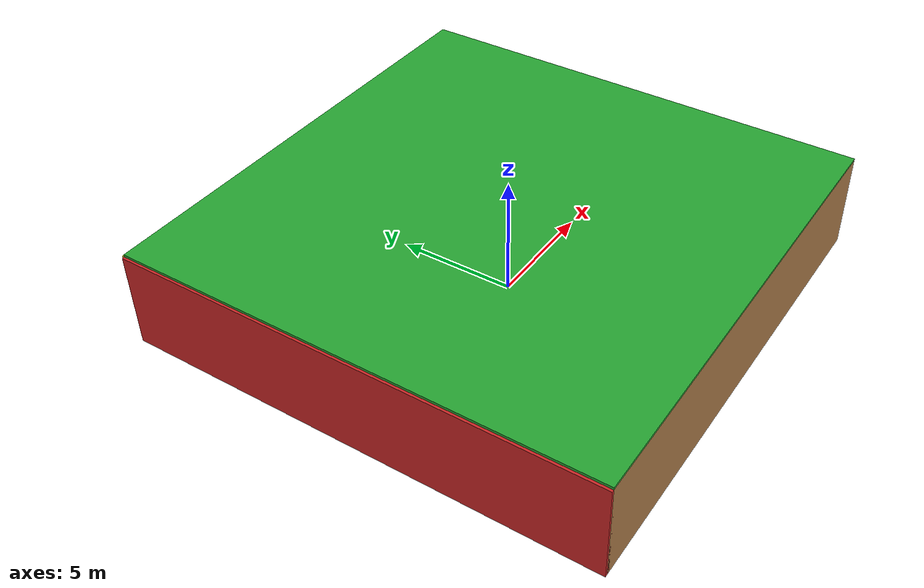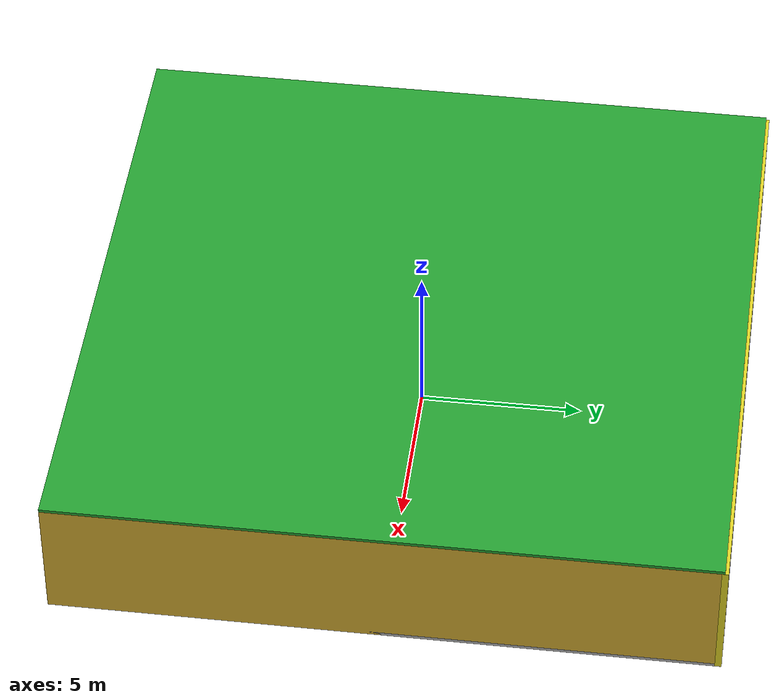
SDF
<sdf version="1.4">
 <world name="default">
  <physics type="ode">
   <max_step_size>0.001</max_step_size>
   <real_time_factor>1</real_time_factor>
   <real_time_update_rate>1000</real_time_update_rate>
   <gravity>0 0 -9.8</gravity>
  </physics>
  <scene><ambient>0.4 0.4 0.4 1</ambient><background>0.7 0.7 0.7 1</background><shadows>1</shadows></scene>
  <model name="Surrounding">
   <static>1</static>
   <link name="Ceiling">
    <collision name="Ceiling_Collision"><geometry><box><size>20 20 0.1</size></box></geometry></collision>
    <visual name="Ceiling_Visual">
     <geometry><box><size>20 20 0.1</size></box></geometry>
     <material>
      <script><uri>file://media/materials/scripts/gazebo.material</uri><name>Gazebo/Green</name></script>
     </material>
    </visual>
    <pose>0 0 4.05 0 0 0</pose>
   </link>
   <link name="Wall_South">
    <collision name="Wall_South_Collision">
     <geometry><box><size>20 0 4</size></box></geometry>
     <pose>0 0 2 0 -0 0</pose>
    </collision>
    <visual name="Wall_South_Visual">
     <pose>0 0 2 0 -0 0</pose>
     <geometry><box><size>20 0 4</size></box></geometry>
     <material>
      <script><uri>file://media/materials/scripts/gazebo.material</uri><name>Gazebo/Wood</name></script>
     </material>
    </visual>
    <velocity_decay><linear>0</linear><angular>0</angular></velocity_decay>
    <pose>0 -10 0 0 -0 0</pose>
   </link>
   <link name="Wall_East">
    <collision name="Wall_21_Collision">
     <geometry><box><size>20 0 4</size></box></geometry>
     <pose>0 0 2 0 -0 0</pose>
    </collision>
    <visual name="Wall_21_Visual">
     <pose>0 0 2 0 -0 0</pose>
     <geometry><box><size>20 0 4</size></box></geometry>
     <material>
      <script><uri>file://media/materials/scripts/gazebo.material</uri><name>Gazebo/Gold</name></script>
     </material>
    </visual>
    <velocity_decay><linear>0</linear><angular>0</angular></velocity_decay>
    <pose>10 0 0 0 -0 1.5708</pose>
   </link>
   <link name="Wall_North">
    <collision name="Wall_22_Collision">
     <geometry><box><size>20 0.2 4</size></box></geometry>
     <pose>0 0 2 0 -0 0</pose>
    </collision>
    <visual name="Wall_22_Visual">
     <pose>0 0 2 0 -0 0</pose>
     <geometry><box><size>20 0.2 4</size></box></geometry>
     <material>
      <script><uri>file://media/materials/scripts/gazebo.material</uri><name>Gazebo/YellowGlow</name></script>
     </material>
    </visual>
    <velocity_decay><linear>0</linear><angular>0</angular></velocity_decay>
    <pose>0 10 0 0 -0 0</pose>
   </link>
   <link name="Wall_West">
    <collision name="Wall_23_Collision">
     <geometry><box><size>20 0.2 4</size></box></geometry>
     <pose>0 0 2 0 -0 0</pose>
    </collision>
    <visual name="Wall_23_Visual">
     <pose>0 0 2 0 -0 0</pose>
     <geometry><box><size>20 0.2 4</size></box></geometry>
     <material>
      <script><uri>file://media/materials/scripts/gazebo.material</uri><name>Gazebo/RedBright</name></script>
     </material>
    </visual>
    <velocity_decay><linear>0</linear><angular>0</angular></velocity_decay>
    <pose>-10 0 0 0 0 -1.5708</pose>
   </link>
   <link name="Ground_link">
    <collision name="collision">
     <pose>0 0 .05 0 -0 0</pose>
     <geometry><box><size>20 20 0.1</size></box></geometry>
    </collision>
    <visual name="visual">
     <pose>0 0 .05 0 -0 0</pose>
     <geometry><box><size>20 20 0.1</size></box></geometry>
     <material>
      <script><uri>file://media/materials/scripts/gazebo.material</uri><name>Gazebo/PioneerBody</name></script>
     </material>
    </visual>
   </link>
   <static>1</static>
  </model>
  <spherical_coordinates>
   <surface_model>EARTH_WGS84</surface_model>
   <latitude_deg>0</latitude_deg>
   <longitude_deg>0</longitude_deg>
   <elevation>0</elevation>
   <heading_deg>0</heading_deg>
  </spherical_coordinates>
  <light name="lightball_0" type="diffuse">
   <diffuse>0.8 0.8 0.8 1</diffuse>
   <specular>0.2 0.2 0.2 1</specular>
   <attenuation>
    <range>100</range>
    <constant>0.7</constant>
    <linear>0.01</linear>
    <quadratic>0.001</quadratic>
   </attenuation>
   <direction>-0.5 0.1 -0.9</direction>
   <pose>-1.03596454018 2.85514704484 1.06696857901 0 0 0</pose>
  </light>
  <light name="lightball_1" type="diffuse">
   <diffuse>0.8 0.8 0.8 1</diffuse>
   <specular>0.2 0.2 0.2 1</specular>
   <attenuation>
    <range>100</range>
    <constant>0.7</constant>
    <linear>0.01</linear>
    <quadratic>0.001</quadratic>
   </attenuation>
   <direction>-0.5 0.1 -0.9</direction>
   <pose>2.10127721429 -8.61214485863 2.89331886409 0 0 0</pose>
  </light>
  <include><uri>model://table</uri><pose>-6.74715446949 -7.51721799492 0 0 0 0.101819004678</pose></include>
  <include><uri>model://cabinet</uri><pose>-7.36514493451 1.04918219356 0 0 0 0.701753558101</pose></include>
  <include><uri>model://cabinet</uri><pose>-8.04021281002 4.22796539699 0 0 0 2.65818764503</pose></include>
  <include>
   <uri>model://robocup_3Dsim_goal</uri>
   <pose>-3.94064111418 -1.66671697606 0 0 0 2.14850188191</pose>
  </include>
  <include><uri>model://cabinet</uri><pose>1.62263492646 -4.2899604294 0 0 0 2.99890370719</pose></include>
  <include><uri>model://cabinet</uri><pose>4.21342453213 5.02436649089 0 0 0 2.91643061962</pose></include>
  <include><uri>model://cabinet</uri><pose>7.01908833537 -3.80214470708 0 0 0 0.305427832923</pose></include>
  <include>
   <uri>model://textured_shapes</uri>
   <pose>7.27458779807 4.43615579369 0 0 0 2.94987616083</pose>
  </include>
  <include>
   <uri>model://construction_cone</uri>
   <pose>8.08708394184 7.56162543789 0 0 0 3.10788509134</pose>
  </include>
 </world>
</sdf>

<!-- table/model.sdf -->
<sdf version="1.5">
  <model name="table">
    <static>true</static>
    <link name="link">
      <collision name="surface">
        <pose>0 0 1.0 0 0 0</pose>
        <geometry>
          <box>
            <size>1.5 0.8 0.03</size>
          </box>
        </geometry>
        <surface>
          <friction>
            <ode>
              <mu>0.6</mu>
              <mu2>0.6</mu2>
            </ode>
          </friction>
        </surface>
      </collision>
      <visual name="visual1">
        <pose>0 0 1.0 0 0 0</pose>
        <geometry>
          <box>
            <size>1.5 0.8 0.03</size>
          </box>
        </geometry>
        <material>
          <script>
            <uri>model://media/materials/scripts/gazebo.material</uri>
            <name>Gazebo/Wood</name>
          </script>
        </material>
      </visual>
      <collision name="front_left_leg">
        <pose>0.68 0.38 0.5 0 0 0</pose>
        <geometry>
          <cylinder>
            <radius>0.02</radius>
            <length>1.0</length>
          </cylinder>
        </geometry>
      </collision>
      <visual name="front_left_leg">
        <pose>0.68 0.38 0.5 0 0 0</pose>
        <geometry>
          <cylinder>
            <radius>0.02</radius>
            <length>1.0</length>
          </cylinder>
        </geometry>
        <material>
          <script>
            <uri>model://media/materials/scripts/gazebo.material</uri>
            <name>Gazebo/Grey</name>
          </script>
        </material>
      </visual>
      <collision name="front_right_leg">
        <pose>0.68 -0.38 0.5 0 0 0</pose>
        <geometry>
          <cylinder>
            <radius>0.02</radius>
            <length>1.0</length>
          </cylinder>
        </geometry>
      </collision>
      <visual name="front_right_leg">
        <pose>0.68 -0.38 0.5 0 0 0</pose>
        <geometry>
          <cylinder>
            <radius>0.02</radius>
            <length>1.0</length>
          </cylinder>
        </geometry>
        <material>
          <script>
            <uri>model://media/materials/scripts/gazebo.material</uri>
            <name>Gazebo/Grey</name>
          </script>
        </material>
      </visual>
      <collision name="back_right_leg">
        <pose>-0.68 -0.38 0.5 0 0 0</pose>
        <geometry>
          <cylinder>
            <radius>0.02</radius>
            <length>1.0</length>
          </cylinder>
        </geometry>
      </collision>
      <visual name="back_right_leg">
        <pose>-0.68 -0.38 0.5 0 0 0</pose>
        <geometry>
          <cylinder>
            <radius>0.02</radius>
            <length>1.0</length>
          </cylinder>
        </geometry>
        <material>
          <script>
            <uri>model://media/materials/scripts/gazebo.material</uri>
            <name>Gazebo/Grey</name>
          </script>
        </material>
      </visual>
      <collision name="back_left_leg">
        <pose>-0.68 0.38 0.5 0 0 0</pose>
        <geometry>
          <cylinder>
            <radius>0.02</radius>
            <length>1.0</length>
          </cylinder>
        </geometry>
      </collision>
      <visual name="back_left_leg">
        <pose>-0.68 0.38 0.5 0 0 0</pose>
        <geometry>
          <cylinder>
            <radius>0.02</radius>
            <length>1.0</length>
          </cylinder>
        </geometry>
        <material>
          <script>
            <uri>model://media/materials/scripts/gazebo.material</uri>
            <name>Gazebo/Grey</name>
          </script>
        </material>
      </visual>
    </link>
  </model>
</sdf>

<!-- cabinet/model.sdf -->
<sdf version="1.5">
  <model name="cabinet">
    <static>true</static>
    <link name="cabinet_bottom_plate">
      <inertial>
        <pose>0 0 -1 0 0 0</pose>
        <inertia>
          <ixx>2.050000</ixx>
          <ixy>0</ixy>
          <ixz>0</ixz>
          <iyy>2.050000</iyy>
          <iyz>0</iyz>
          <izz>2.050000</izz>
        </inertia>
        <mass>25.000000</mass>
      </inertial>
      <collision name="cabinet_bottom_plate_geom">
        <pose>0 0 0.010000 0 0 0</pose>
        <geometry>
          <box>
            <size>0.450000 0.450000 0.020000</size>
          </box>
        </geometry>
      </collision>
      <visual name="cabinet_bottom_plate_geom_visual">
        <pose>0 0 0.010000 0 0 0</pose>
        <geometry>
          <box>
            <size>0.450000 0.450000 0.020000</size>
          </box>
        </geometry>
        <material>
          <script>
            <uri>model://media/materials/scripts/gazebo.material</uri>
            <name>Gazebo/Wood</name>
          </script>
        </material>
      </visual>
      <collision name="cabinet_bottom_plate_geom_cabinet_back_plate">
        <pose>0.235000 0 0.510000 0 0 0</pose>
        <geometry>
          <box>
            <size>0.020000 0.450000 1.020000</size>
          </box>
        </geometry>
      </collision>
      <visual name="cabinet_bottom_plate_geom_cabinet_back_plate_visual">
        <pose>0.235000 0 0.510000 0 0 0</pose>
        <geometry>
          <box>
            <size>0.020000 0.450000 1.020000</size>
          </box>
        </geometry>
        <material>
          <script>
            <uri>model://media/materials/scripts/gazebo.material</uri>
            <name>Gazebo/Wood</name>
          </script>
        </material>
      </visual>
      <collision name="cabinet_bottom_plate_geom_cabinet_left_plate">
        <pose>0 0.235000 0.510000 0 0 0</pose>
        <geometry>
          <box>
            <size>0.450000 0.020000 1.020000</size>
          </box>
        </geometry>
      </collision>
      <visual name="cabinet_bottom_plate_geom_cabinet_left_plate_visual">
        <pose>0 0.235000 0.510000 0 0 0</pose>
        <geometry>
          <box>
            <size>0.450000 0.020000 1.020000</size>
          </box>
        </geometry>
        <material>
          <script>
            <uri>model://media/materials/scripts/gazebo.material</uri>
            <name>Gazebo/Wood</name>
          </script>
        </material>
      </visual>
      <collision name="cabinet_bottom_plate_geom_cabinet_middle_plate">
        <pose>0 0 0.510000 0 0 0</pose>
        <geometry>
          <box>
            <size>0.450000 0.450000 0.020000</size>
          </box>
        </geometry>
      </collision>
      <visual name="cabinet_bottom_plate_geom_cabinet_middle_plate_visual">
        <pose>0 0 0.510000 0 0 0</pose>
        <geometry>
          <box>
            <size>0.450000 0.450000 0.020000</size>
          </box>
        </geometry>
        <material>
          <script>
            <uri>model://media/materials/scripts/gazebo.material</uri>
            <name>Gazebo/Wood</name>
          </script>
        </material>
      </visual>
      <collision name="cabinet_bottom_plate_geom_cabinet_right_plate">
        <pose>0 -0.235000 0.510000 0 0 0</pose>
        <geometry>
          <box>
            <size>0.450000 0.020000 1.020000</size>
          </box>
        </geometry>
      </collision>
      <visual name="cabinet_bottom_plate_geom_cabinet_right_plate_visual">
        <pose>0 -0.235000 0.510000 0 0 0</pose>
        <geometry>
          <box>
            <size>0.450000 0.020000 1.020000</size>
          </box>
        </geometry>
        <material>
          <script>
            <uri>model://media/materials/scripts/gazebo.material</uri>
            <name>Gazebo/Wood</name>
          </script>
        </material>
      </visual>
      <collision name="cabinet_bottom_plate_geom_cabinet_top_plate">
        <pose>0 0 1.010000 0 0 0</pose>
        <geometry>
          <box>
            <size>0.450000 0.450000 0.020000</size>
          </box>
        </geometry>
      </collision>
      <visual name="cabinet_bottom_plate_geom_cabinet_top_plate_visual">
        <pose>0 0 1.010000 0 0 0</pose>
        <geometry>
          <box>
            <size>0.450000 0.450000 0.020000</size>
          </box>
        </geometry>
        <material>
          <script>
            <uri>model://media/materials/scripts/gazebo.material</uri>
            <name>Gazebo/Wood</name>
          </script>
        </material>
      </visual>
    </link>
  </model>
</sdf>

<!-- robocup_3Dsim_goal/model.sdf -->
<sdf version="1.5">
  <model name="robocup_3d_goal">
    <static>true</static>
    <link name="left_post">
      <pose>0 1.05 0.45 0 0 0</pose>
      <collision name="collision">
        <geometry>
          <cylinder>
            <radius>0.05</radius>
            <length>0.9</length>
          </cylinder>
        </geometry>
      </collision>
      <visual name="visual">
        <geometry>
          <cylinder>
            <radius>0.05</radius>
            <length>0.9</length>
          </cylinder>
        </geometry>
        <material>
          <script>
            <uri>file://media/materials/scripts/gazebo.material</uri>
            <name>Gazebo/ZincYellow</name>
          </script>
        </material>
      </visual>
    </link>
    <link name="left_support_horiz_lower">
      <pose>0.30 1.05 0.01 0 0 0</pose>
      <collision name="collision">
        <geometry>
          <box>
            <size>0.50 0.02 0.02</size>
          </box>
        </geometry>
      </collision>
      <visual name="visual">
        <geometry>
          <box>
            <size>0.50 0.02 0.02</size>
          </box>
        </geometry>
        <material>
          <script>
            <uri>file://media/materials/scripts/gazebo.material</uri>
            <name>Gazebo/White</name>
          </script>
        </material>
      </visual>
    </link>
    <link name="left_support_horiz_upper">
      <pose>0.30 1.05 0.79 0 0 0</pose>
      <collision name="collision">
        <geometry>
          <box>
            <size>0.50 0.02 0.02</size>
          </box>
        </geometry>
      </collision>
      <visual name="visual">
        <geometry>
          <box>
            <size>0.50 0.02 0.02</size>
          </box>
        </geometry>
        <material>
          <script>
            <uri>file://media/materials/scripts/gazebo.material</uri>
            <name>Gazebo/White</name>
          </script>
        </material>
      </visual>
    </link>
    <link name="left_support_vertical">
      <pose>0.56 1.05 0.4 0 1.5708 0</pose>
      <collision name="collision">
        <geometry>
          <box>
            <size>0.80 0.02 0.02</size>
          </box>
        </geometry>
      </collision>
      <visual name="visual">
        <geometry>
          <box>
            <size>0.80 0.02 0.02</size>
          </box>
        </geometry>
        <material>
          <script>
            <uri>file://media/materials/scripts/gazebo.material</uri>
            <name>Gazebo/White</name>
          </script>
        </material>
      </visual>
    </link>
    <link name="right_support_horiz_lower">
      <pose>0.30 -1.05 0.01 0 0 0</pose>
      <collision name="collision">
        <geometry>
          <box>
            <size>0.50 0.02 0.02</size>
          </box>
        </geometry>
      </collision>
      <visual name="visual">
        <geometry>
          <box>
            <size>0.50 0.02 0.02</size>
          </box>
        </geometry>
        <material>
          <script>
            <uri>file://media/materials/scripts/gazebo.material</uri>
            <name>Gazebo/White</name>
          </script>
        </material>
      </visual>
    </link>
    <link name="right_support_horiz_upper">
      <pose>0.30 -1.05 0.79 0 0 0</pose>
      <collision name="collision">
        <geometry>
          <box>
            <size>0.50 0.02 0.02</size>
          </box>
        </geometry>
      </collision>
      <visual name="visual">
        <geometry>
          <box>
            <size>0.50 0.02 0.02</size>
          </box>
        </geometry>
        <material>
          <script>
            <uri>file://media/materials/scripts/gazebo.material</uri>
            <name>Gazebo/White</name>
          </script>
        </material>
      </visual>
    </link>
    <link name="right_support_vertical">
      <pose>0.56 -1.05 0.4 0 1.5708 0</pose>
      <collision name="collision">
        <geometry>
          <box>
            <size>0.80 0.02 0.02</size>
          </box>
        </geometry>
      </collision>
      <visual name="visual">
        <geometry>
          <box>
            <size>0.80 0.02 0.02</size>
          </box>
        </geometry>
        <material>
          <script>
            <uri>file://media/materials/scripts/gazebo.material</uri>
            <name>Gazebo/White</name>
          </script>
        </material>
      </visual>
    </link>
    <link name="center_support_horiz_lower">
      <pose>0.56 0 0.01 0 1.5708 0</pose>
      <collision name="collision">
        <geometry>
          <box>
            <size>0.02 2.08 0.02</size>
          </box>
        </geometry>
      </collision>
      <visual name="visual">
        <geometry>
          <box>
            <size>0.02 2.08 0.02</size>
          </box>
        </geometry>
        <material>
          <script>
            <uri>file://media/materials/scripts/gazebo.material</uri>
            <name>Gazebo/White</name>
          </script>
        </material>
      </visual>
    </link>
    <link name="center_support_horiz_upper">
      <pose>0.56 0 0.79 0 1.5708 0</pose>
      <collision name="collision">
        <geometry>
          <box>
            <size>0.02 2.08 0.02</size>
          </box>
        </geometry>
      </collision>
      <visual name="visual">
        <geometry>
          <box>
            <size>0.02 2.08 0.02</size>
          </box>
        </geometry>
        <material>
          <script>
            <uri>file://media/materials/scripts/gazebo.material</uri>
            <name>Gazebo/White</name>
          </script>
        </material>
      </visual>
    </link>
    <link name="right_post">
      <pose>0 -1.05 0.45 0 0 0</pose>
      <collision name="collision">
        <geometry>
          <cylinder>
            <radius>0.05</radius>
            <length>0.9</length>
          </cylinder>
        </geometry>
      </collision>
      <visual name="visual">
        <geometry>
          <cylinder>
            <radius>0.05</radius>
            <length>0.9</length>
          </cylinder>
        </geometry>
        <material>
          <script>
            <uri>file://media/materials/scripts/gazebo.material</uri>
            <name>Gazebo/ZincYellow</name>
          </script>
        </material>
      </visual>
    </link>
    <link name="crossbar">
      <pose>0 0 0.85 1.57 1.57 0</pose>
      <collision name="collision">
        <geometry>
          <cylinder>
            <radius>0.05</radius>
            <length>2.0</length>
          </cylinder>
        </geometry>
      </collision>
      <visual name="visual">
        <geometry>
          <cylinder>
            <radius>0.05</radius>
            <length>2.0</length>
          </cylinder>
        </geometry>
        <material>
          <script>
            <uri>file://media/materials/scripts/gazebo.material</uri>
            <name>Gazebo/ZincYellow</name>
          </script>
        </material>
      </visual>
    </link>
    <link name="center_net">
      <pose>0.56 0 0.40 0 0 0</pose>
      <collision name="collision">
        <geometry>
          <box>
            <size>0.01 2.1 0.80</size>
          </box>
        </geometry>
      </collision>
      <visual name="visual">
        <geometry>
          <box>
            <size>0.01 2.1 0.80</size>
          </box>
        </geometry>
        <material>
          <script>
            <uri>model://../model_source/models/robocup09_spl_field/materials/scripts/</uri>
            <uri>model://../model_source/models/robocup09_spl_field/materials/textures/</uri>
            <name>RoboCup/Net</name>
          </script>
        </material>
      </visual>
    </link>
    <link name="left_net">
      <pose>0.30 1.05 0.40 0 0 0</pose>
      <collision name="collision">
        <geometry>
          <box>
            <size>0.50 0.01 0.76</size>
          </box>
        </geometry>
      </collision>
      <visual name="visual">
        <geometry>
          <box>
            <size>0.50 0.01 0.76</size>
          </box>
        </geometry>
        <material>
          <script>
            <uri>model://../model_source/models/robocup09_spl_field/materials/scripts/</uri>
            <uri>model://../model_source/models/robocup09_spl_field/materials/textures/</uri>
            <name>RoboCup/Net</name>
          </script>
        </material>
      </visual>
    </link>
    <link name="right_net">
      <pose>0.30 -1.05 0.40 0 0 0</pose>
      <collision name="collision">
        <geometry>
          <box>
            <size>0.50 0.01 0.76</size>
          </box>
        </geometry>
      </collision>
      <visual name="visual">
        <geometry>
          <box>
            <size>0.50 0.01 0.76</size>
          </box>
        </geometry>
        <material>
          <script>
            <uri>model://../model_source/models/robocup09_spl_field/materials/scripts/</uri>
            <uri>model://../model_source/models/robocup09_spl_field/materials/textures/</uri>
            <name>RoboCup/Net</name>
          </script>
        </material>
      </visual>
    </link>
  </model>
</sdf>

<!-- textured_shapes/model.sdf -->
<sdf version="1.6">
  <model name="textured_shapes">
    <pose>0 0 0.5 0 0 0</pose>
    <link name="box">
      <pose>0 -1.5 0 0 0 0</pose>
      <collision name="collision">
        <geometry>
          <box>
            <size>1 1 1</size>
          </box>
        </geometry>
      </collision>
      <visual name="visual">
        <geometry>
          <box>
            <size>1 1 1</size>
          </box>
        </geometry>
        <material>
          <script>
            <uri>model://../model_source/models/textured_shapes/materials/scripts</uri>
            <uri>model://../model_source/models/textured_shapes/materials/textures</uri>
            <name>TexturedShape/Squares</name>
          </script>
        </material>
      </visual>
    </link>
    <link name="sphere">
      <collision name="collision">
        <geometry>
          <sphere>
            <radius>0.5</radius>
          </sphere>
        </geometry>
      </collision>
      <visual name="visual">
        <geometry>
          <sphere>
            <radius>0.5</radius>
          </sphere>
        </geometry>
        <material>
          <script>
            <uri>model://../model_source/models/textured_shapes/materials/scripts</uri>
            <uri>model://../model_source/models/textured_shapes/materials/textures</uri>
            <name>TexturedShape/Squares</name>
          </script>
        </material>
      </visual>
    </link>
    <link name="cylinder">
      <pose>0 1.5 0 0 0 0</pose>
      <collision name="collision">
        <geometry>
          <cylinder>
            <radius>0.5</radius>
            <length>1</length>
          </cylinder>
        </geometry>
      </collision>
      <visual name="visual">
        <geometry>
          <cylinder>
            <radius>0.5</radius>
            <length>1</length>
          </cylinder>
        </geometry>
        <material>
          <script>
            <uri>model://../model_source/models/textured_shapes/materials/scripts</uri>
            <uri>model://../model_source/models/textured_shapes/materials/textures</uri>
            <name>TexturedShape/Squares</name>
          </script>
        </material>
      </visual>
    </link>
  </model>
</sdf>

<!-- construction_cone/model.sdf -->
<sdf version="1.5">
  <model name="Construction Cone">
    <link name="link">
      <collision name="collision">
        <geometry>
          <mesh>
            <scale>10 10 10</scale>
            <uri>file://isr-testbed/construction_cone/meshes/construction_cone.dae</uri>
          </mesh>
        </geometry>
      </collision>
      <visual name="visual">
        <geometry>
          <mesh>
            <scale>10 10 10</scale>
            <uri>file://isr-testbed/construction_cone/meshes/construction_cone.dae</uri>
          </mesh>
        </geometry>
      </visual>
    </link>
  </model>
</sdf>
